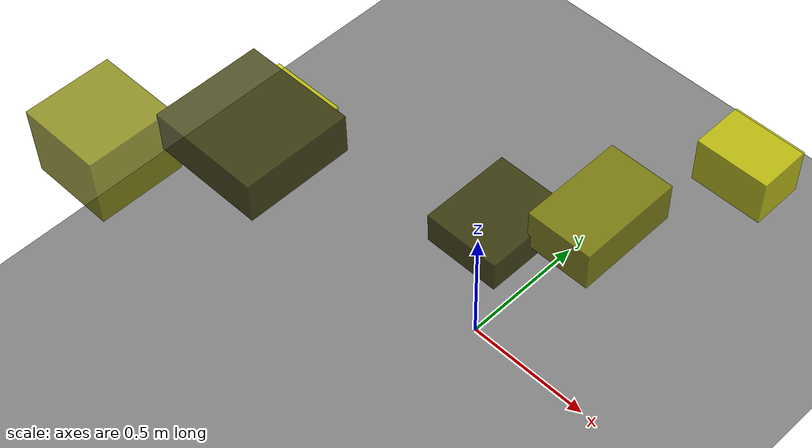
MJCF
<?xml version="1.0"?>
<mujoco model="obstacle_scene">
  <compiler angle="radian" coordinate="local"/>
  <option timestep="0.001" gravity="0 0 -9.81"/>

  <asset>
    <material name="obstacle_mat" rgba="0.8 0.8 0.0 0.8"/>
    <material name="ground_mat" rgba="0.5 0.5 0.5 1"/>
  </asset>

  <worldbody>
    <!-- Ground plane -->
    <geom name="ground" type="plane" size="3 3 0.1" material="ground_mat"/>

    <!-- Obstacles -->
    <body name="obstacle_0" pos="-0.407316 -0.556377 1.161366">
      <geom name="obs_0" type="box" size="0.201658 0.191080 0.074106" rgba="0.2 0.2 0.0 0.8"/>
    </body>
    <body name="obstacle_1" pos="0.400563 0.109869 0.880152">
      <geom name="obs_1" type="box" size="0.121569 0.192264 0.076115" rgba="0.5 0.5 0.0 0.8"/>
    </body>
    <body name="obstacle_2" pos="0.424385 0.904215 0.484106">
      <geom name="obs_2" type="box" size="0.147002 0.105316 0.096720" rgba="0.8 0.8 0.0 0.8"/>
    </body>
    <body name="obstacle_3" pos="0.149885 -0.074389 0.795268">
      <geom name="obs_3" type="box" size="0.141866 0.167686 0.058781" rgba="0.2 0.2 0.0 0.8"/>
    </body>
    <body name="obstacle_4" pos="-0.758695 -0.847198 1.087822">
      <geom name="obs_4" type="box" size="0.151769 0.152469 0.127061" rgba="0.5 0.5 0.0 0.8"/>
    </body>
    <body name="obstacle_5" pos="-0.817649 -0.165103 0.539777">
      <geom name="obs_5" type="box" size="0.149426 0.170002 0.110124" rgba="0.8 0.8 0.0 0.8"/>
    </body>
  </worldbody>
</mujoco>
